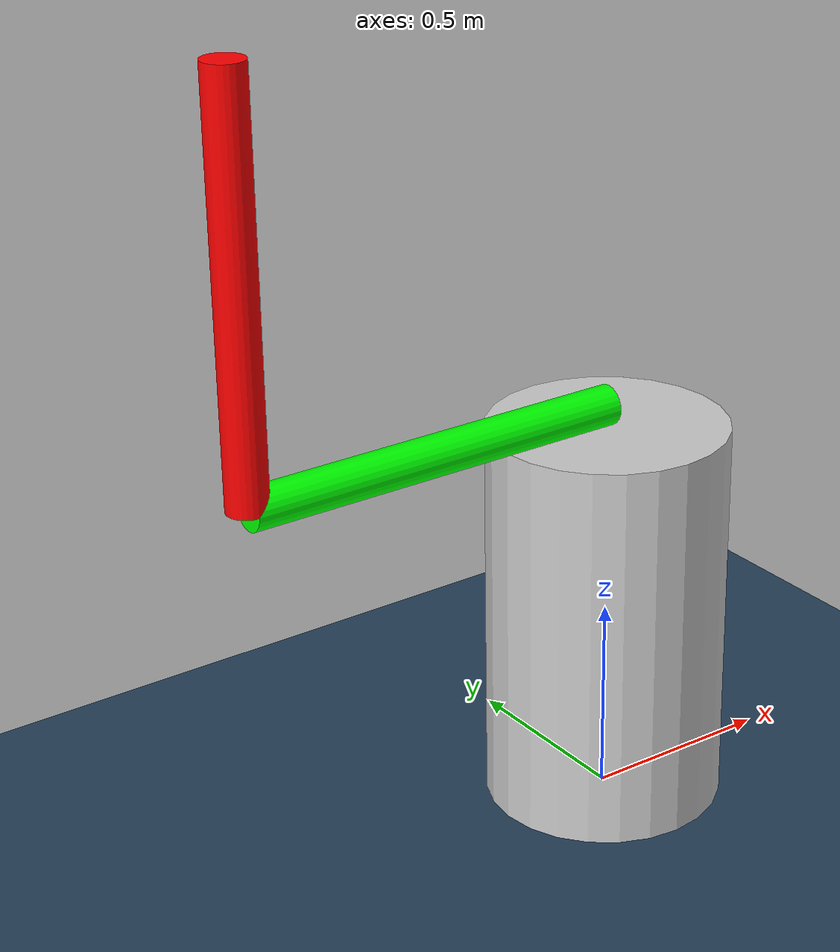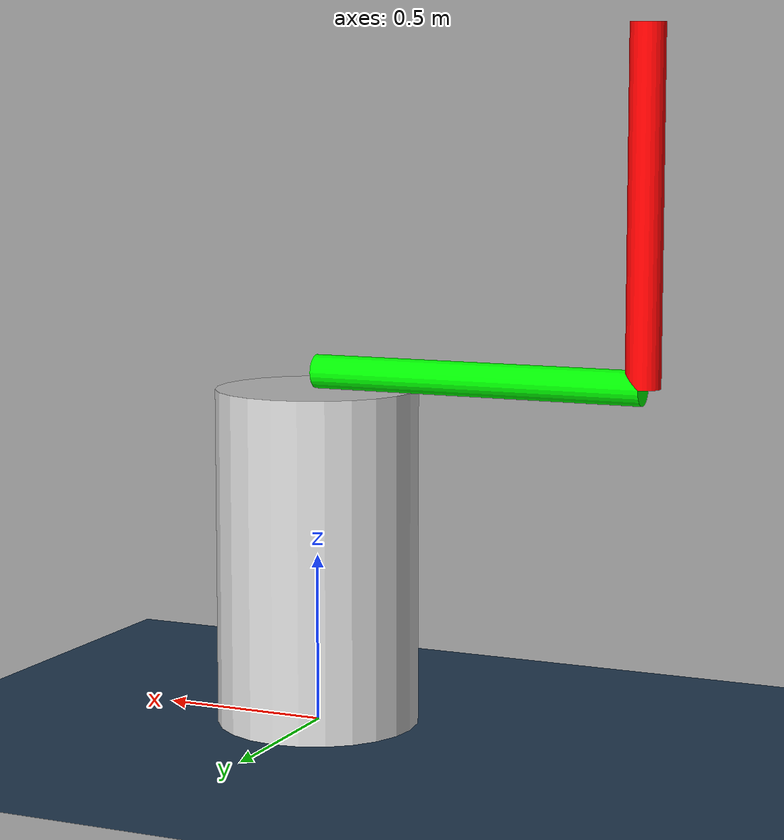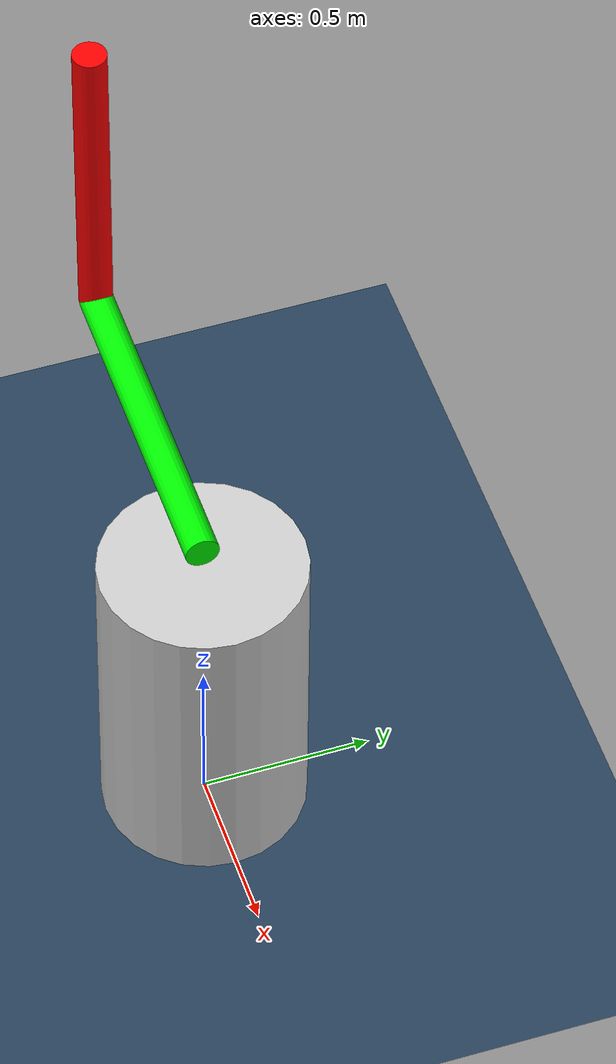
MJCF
<mujoco>
  <visual>
    <headlight diffuse="0.6 0.6 0.6" ambient="0.3 0.3 0.3" specular="0 0 0"/>
    <rgba haze="0.15 0.25 0.35 1"/>
    <global azimuth="-120" elevation="-20"/>
  </visual>

  <asset>
    <texture type="skybox" builtin="gradient" rgb1="0.3 0.5 0.7" rgb2="0 0 0" width="512" height="3072"/>
    <texture type="2d" name="groundplane" builtin="checker" mark="edge" rgb1="0.2 0.3 0.4" rgb2="0.1 0.2 0.3"
      markrgb="0.8 0.8 0.8" width="300" height="300"/>
    <material name="groundplane" texture="groundplane" texuniform="true" texrepeat="5 5" reflectance="0.2"/>
  </asset>

  <option gravity="0 0 -9.81" />

  <worldbody>
    <light pos="0 0 1.5" dir="0 0 -1" directional="true"/>
    <geom name="floor" size="0 0 0.05" type="plane" material="groundplane"/>

    <!-- Add a stand for the first link -->
    <body name="stand" pos="0 0 0.5">
      <geom type="cylinder" size="0.3 0.5 0" rgba="0.8 0.8 0.8 1" mass="1"/>

      <body pos="-0.5 0 0.55" euler="0 90 0">
        <joint name="joint0" type="hinge" axis="-1 0 0" pos="0 0 0.5"/>
        <geom type="cylinder" size="0.05 0.5" rgba="0 1 0 1" mass="1"/>

        <body pos="-0.5 0 -0.5" euler="90 90 0">
          <joint name="joint1" type="hinge" axis="0 -1 0" pos="0 0 0.5"/>
          <geom type="cylinder" size="0.05 0.5" rgba="1 0 0 1" mass="1"/>
        </body>
      </body>
    </body>
  </worldbody>

  <actuator>
    <motor name="torque0" joint="joint0" gear="1"/>
    <motor name="torque1" joint="joint1" gear="1"/>
  </actuator>

  <sensor>
    <jointpos name="j1" joint="joint0"/>
    <jointpos name="j2" joint="joint1"/>
  </sensor>
</mujoco>
